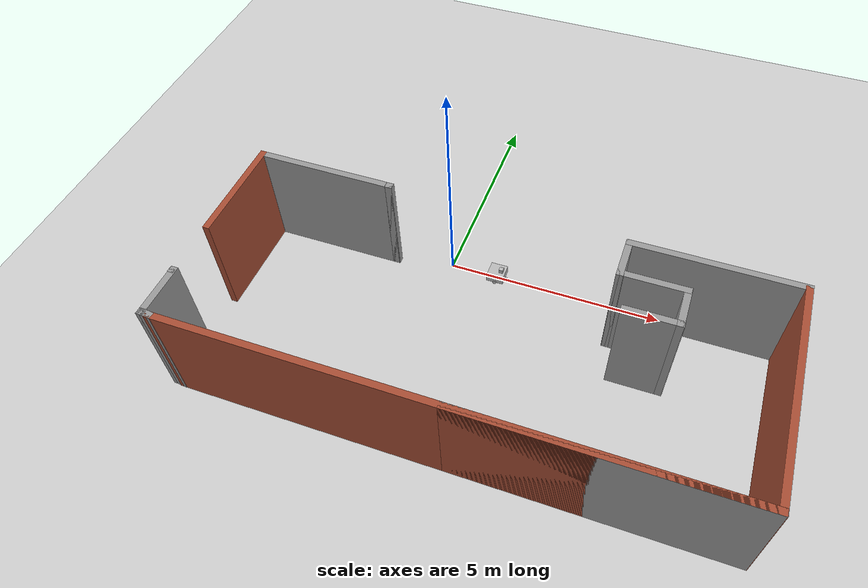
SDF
<sdf version="1.7">
 <world name="default">
  <light name="sun" type="directional">
   <pose>0 0 10 0 -0 0</pose>
   <diffuse>0.8 0.8 0.8 1</diffuse>
   <specular>0.2 0.2 0.2 1</specular>
   <attenuation>
    <range>1000</range>
    <constant>0.9</constant>
    <linear>0.01</linear>
    <quadratic>0.001</quadratic>
   </attenuation>
   <direction>-0.5 0.1 -0.9</direction>
   <spot><inner_angle>0</inner_angle><outer_angle>0</outer_angle><falloff>0</falloff></spot>
  </light>
  <model name="ground_plane">
   <static>1</static>
   <link name="link">
    <collision name="collision">
     <geometry><plane><normal>0 0 1</normal><size>100 100</size></plane></geometry>
     <surface>
      <contact><collide_bitmask>65535</collide_bitmask></contact>
      <friction><ode><mu>100</mu><mu2>50</mu2></ode></friction>
     </surface>
    </collision>
    <visual name="visual">
     <cast_shadows>0</cast_shadows>
     <geometry><plane><normal>0 0 1</normal><size>100 100</size></plane></geometry>
     <material>
      <script><uri>file://media/materials/scripts/gazebo.material</uri><name>Gazebo/Grey</name></script>
     </material>
    </visual>
   </link>
  </model>
  <gravity>0 0 -9.8</gravity>
  <magnetic_field>6e-06 2.3e-05 -4.2e-05</magnetic_field>
  <atmosphere type="adiabatic"/>
  <physics type="ode">
   <max_step_size>0.001</max_step_size>
   <real_time_factor>1</real_time_factor>
   <real_time_update_rate>1000</real_time_update_rate>
  </physics>
  <scene><ambient>0.4 0.4 0.4 1</ambient><background>0.7 0.7 0.7 1</background><shadows>1</shadows></scene>
  <spherical_coordinates>
   <surface_model>EARTH_WGS84</surface_model>
   <latitude_deg>0</latitude_deg>
   <longitude_deg>0</longitude_deg>
   <elevation>0</elevation>
   <heading_deg>0</heading_deg>
  </spherical_coordinates>
  <model name="differential_drive_robot">
   <link name="base_link">
    <inertial>
     <pose>1e-06 0 0.1 0 -0 0</pose>
     <mass>1.00001</mass>
     <inertia>
      <ixx>0.100001</ixx>
      <ixy>0</ixy>
      <ixz>-4.99995e-08</ixz>
      <iyy>0.100001</iyy>
      <iyz>0</iyz>
      <izz>0.100001</izz>
     </inertia>
    </inertial>
    <collision name="base_link_collision"><geometry><box><size>0.4 0.4 0.2</size></box></geometry></collision>
    <collision name="base_link_fixed_joint_lump__laser_collision_1">
     <pose>0.1 0 0.15 0 -0 0</pose>
     <geometry><box><size>0.1 0.1 0.1</size></box></geometry>
    </collision>
    <visual name="base_link_visual"><geometry><box><size>0.4 0.4 0.2</size></box></geometry></visual>
    <visual name="base_link_fixed_joint_lump__laser_visual_1">
     <pose>0.1 0 0.15 0 -0 0</pose>
     <geometry><box><size>0.1 0.1 0.1</size></box></geometry>
    </visual>
    <sensor name="laser_sensor" type="ray">
     <visualize>1</visualize>
     <update_rate>40</update_rate>
     <ray>
      <scan>
       <horizontal>
        <samples>640</samples>
        <resolution>1</resolution>
        <min_angle>-1.5708</min_angle>
        <max_angle>1.5708</max_angle>
       </horizontal>
       <vertical><samples>1</samples><min_angle>0</min_angle><max_angle>0</max_angle></vertical>
      </scan>
      <range><min>0.1</min><max>10</max><resolution>0.01</resolution></range>
     </ray>
     <plugin name="gazebo_ros_laser" filename="libgazebo_ros_laser.so">
      <topicName>scan</topicName>
      <frameName>laser</frameName>
      <robotNamespace>/</robotNamespace>
     </plugin>
     <pose>0.1 0 0.15 0 -0 0</pose>
    </sensor>
   </link>
   <joint name="back_wheel_joint" type="revolute">
    <pose relative_to="base_link">-0.2 0 -0.1 0 -0 0</pose>
    <parent>base_link</parent>
    <child>back_wheel</child>
    <axis>
     <xyz>0 1 0</xyz>
     <limit><lower>-1e+16</lower><upper>1e+16</upper></limit>
     <dynamics><spring_reference>0</spring_reference><spring_stiffness>0</spring_stiffness></dynamics>
    </axis>
   </joint>
   <link name="back_wheel">
    <pose relative_to="back_wheel_joint">0 0 0 0 -0 0</pose>
    <inertial>
     <mass>0.5</mass>
     <inertia><ixx>0.1</ixx><ixy>0</ixy><ixz>0</ixz><iyy>0.1</iyy><iyz>0</iyz><izz>0.1</izz></inertia>
    </inertial>
    <collision name="back_wheel_collision">
     <pose>0 0 0 1.5708 -0 0</pose>
     <geometry><cylinder><length>0.02</length><radius>0.05</radius></cylinder></geometry>
    </collision>
    <visual name="back_wheel_visual">
     <pose>0 0 0 1.5708 -0 0</pose>
     <geometry><cylinder><length>0.02</length><radius>0.05</radius></cylinder></geometry>
    </visual>
   </link>
   <joint name="front_wheel_joint" type="revolute">
    <pose relative_to="base_link">0.2 0 -0.1 0 -0 0</pose>
    <parent>base_link</parent>
    <child>front_wheel</child>
    <axis>
     <xyz>0 1 0</xyz>
     <limit><lower>-1e+16</lower><upper>1e+16</upper></limit>
     <dynamics><spring_reference>0</spring_reference><spring_stiffness>0</spring_stiffness></dynamics>
    </axis>
   </joint>
   <link name="front_wheel">
    <pose relative_to="front_wheel_joint">0 0 0 0 -0 0</pose>
    <inertial>
     <mass>0.5</mass>
     <inertia><ixx>0.1</ixx><ixy>0</ixy><ixz>0</ixz><iyy>0.1</iyy><iyz>0</iyz><izz>0.1</izz></inertia>
    </inertial>
    <collision name="front_wheel_collision">
     <pose>0 0 0 1.5708 -0 0</pose>
     <geometry><cylinder><length>0.02</length><radius>0.05</radius></cylinder></geometry>
    </collision>
    <visual name="front_wheel_visual">
     <pose>0 0 0 1.5708 -0 0</pose>
     <geometry><cylinder><length>0.02</length><radius>0.05</radius></cylinder></geometry>
    </visual>
   </link>
   <joint name="left_wheel_joint" type="revolute">
    <pose relative_to="base_link">0 0.2 -0.1 0 -0 0</pose>
    <parent>base_link</parent>
    <child>left_wheel</child>
    <axis>
     <xyz>0 1 0</xyz>
     <limit><lower>-1e+16</lower><upper>1e+16</upper></limit>
     <dynamics><spring_reference>0</spring_reference><spring_stiffness>0</spring_stiffness></dynamics>
    </axis>
   </joint>
   <link name="left_wheel">
    <pose relative_to="left_wheel_joint">0 0 0 0 -0 0</pose>
    <inertial>
     <mass>0.5</mass>
     <inertia><ixx>0.1</ixx><ixy>0</ixy><ixz>0</ixz><iyy>0.1</iyy><iyz>0</iyz><izz>0.1</izz></inertia>
    </inertial>
    <collision name="left_wheel_collision">
     <pose>0 0 0 1.5708 -0 0</pose>
     <geometry><cylinder><length>0.02</length><radius>0.05</radius></cylinder></geometry>
    </collision>
    <visual name="left_wheel_visual">
     <pose>0 0 0 1.5708 -0 0</pose>
     <geometry><cylinder><length>0.02</length><radius>0.05</radius></cylinder></geometry>
    </visual>
   </link>
   <joint name="right_wheel_joint" type="revolute">
    <pose relative_to="base_link">0 -0.2 -0.1 0 -0 0</pose>
    <parent>base_link</parent>
    <child>right_wheel</child>
    <axis>
     <xyz>0 1 0</xyz>
     <limit><lower>-1e+16</lower><upper>1e+16</upper></limit>
     <dynamics><spring_reference>0</spring_reference><spring_stiffness>0</spring_stiffness></dynamics>
    </axis>
   </joint>
   <link name="right_wheel">
    <pose relative_to="right_wheel_joint">0 0 0 0 -0 0</pose>
    <inertial>
     <mass>0.5</mass>
     <inertia><ixx>0.1</ixx><ixy>0</ixy><ixz>0</ixz><iyy>0.1</iyy><iyz>0</iyz><izz>0.1</izz></inertia>
    </inertial>
    <collision name="right_wheel_collision">
     <pose>0 0 0 1.5708 -0 0</pose>
     <geometry><cylinder><length>0.02</length><radius>0.05</radius></cylinder></geometry>
    </collision>
    <visual name="right_wheel_visual">
     <pose>0 0 0 1.5708 -0 0</pose>
     <geometry><cylinder><length>0.02</length><radius>0.05</radius></cylinder></geometry>
    </visual>
   </link>
   <static>0</static>
   <plugin name="robot_state_publisher" filename="libgazebo_ros_robot_state.so">
    <robotNamespace>/</robotNamespace>
   </plugin>
   <plugin name="joint_state_publisher" filename="libgazebo_ros_joint_state_publisher.so">
    <joint_state_topic>joint_states</joint_state_topic>
    <robotNamespace>/</robotNamespace>
   </plugin>
   <plugin name="differential_drive_controller" filename="libgazebo_ros_diff_drive.so">
    <robotNamespace>/</robotNamespace>
    <leftJoint>left_wheel_joint</leftJoint>
    <rightJoint>right_wheel_joint</rightJoint>
    <wheelSeparation>0.4</wheelSeparation>
    <wheelRadius>0.05</wheelRadius>
    <publishWheelTF>1</publishWheelTF>
    <publishWheelJointState>1</publishWheelJointState>
    <publishTf>1</publishTf>
    <updateRate>50</updateRate>
    <commandTopic>cmd_vel</commandTopic>
    <odometryTopic>odom</odometryTopic>
    <odometryFrame>odom</odometryFrame>
    <robotBaseFrame>base_link</robotBaseFrame>
    <odometrySource>1</odometrySource>
    <wheelDiameter>0.1</wheelDiameter>
    <wheelAcceleration>0</wheelAcceleration>
    <wheelTorque>5</wheelTorque>
   </plugin>
   <pose>1.11986 0.003458 0.15 0 -5e-06 0.003097</pose>
  </model>
  <model name="myhouse">
   <pose>1.575 -2.55163 0 0 -0 0</pose>
   <link name="Wall_0">
    <collision name="Wall_0_Collision">
     <geometry><box><size>2.5 0.15 2.5</size></box></geometry>
     <pose>0 0 1.25 0 -0 0</pose>
    </collision>
    <visual name="Wall_0_Visual">
     <pose>0 0 1.25 0 -0 0</pose>
     <geometry><box><size>2.5 0.15 2.5</size></box></geometry>
     <material>
      <script><uri>file://media/materials/scripts/gazebo.material</uri><name>Gazebo/Bricks</name></script>
      <ambient>1 1 1 1</ambient>
     </material>
     <meta><layer>0</layer></meta>
    </visual>
    <pose>-6.005 1.10662 0 0 -0 1.5708</pose>
   </link>
   <link name="Wall_1">
    <collision name="Wall_1_Collision">
     <geometry><box><size>3.25 0.15 2.5</size></box></geometry>
     <pose>0 0 1.25 0 -0 0</pose>
    </collision>
    <visual name="Wall_1_Visual">
     <pose>0 0 1.25 0 -0 0</pose>
     <geometry><box><size>3.25 0.15 2.5</size></box></geometry>
     <material>
      <script><uri>file://media/materials/scripts/gazebo.material</uri><name>Gazebo/Grey</name></script>
      <ambient>1 1 1 1</ambient>
     </material>
     <meta><layer>0</layer></meta>
    </visual>
    <pose>-4.455 2.28163 0 0 -0 0</pose>
   </link>
   <link name="Wall_10">
    <collision name="Wall_10_Collision">
     <geometry><box><size>0.321172 0.15 2.5</size></box></geometry>
     <pose>0 0 1.25 0 -0 0</pose>
    </collision>
    <visual name="Wall_10_Visual">
     <pose>0 0 1.25 0 -0 0</pose>
     <geometry><box><size>0.321172 0.15 2.5</size></box></geometry>
     <material>
      <script><uri>file://media/materials/scripts/gazebo.material</uri><name>Gazebo/Grey</name></script>
      <ambient>1 1 1 1</ambient>
     </material>
     <meta><layer>0</layer></meta>
    </visual>
    <pose>-5.92 -2.45838 0 0 -0 -0.117109</pose>
   </link>
   <link name="Wall_11">
    <collision name="Wall_11_Collision">
     <geometry><box><size>12 0.15 2.5</size></box></geometry>
     <pose>0 0 1.25 0 -0 0</pose>
    </collision>
    <visual name="Wall_11_Visual">
     <pose>0 0 1.25 0 -0 0</pose>
     <geometry><box><size>12 0.15 2.5</size></box></geometry>
     <material>
      <script><uri>file://media/materials/scripts/gazebo.material</uri><name>Gazebo/Bricks</name></script>
      <ambient>1 1 1 1</ambient>
     </material>
     <meta><layer>0</layer></meta>
    </visual>
    <pose>0.09 -2.46837 0 0 -0 0</pose>
   </link>
   <link name="Wall_12">
    <collision name="Wall_12_Collision">
     <geometry><box><size>6 0.15 2.5</size></box></geometry>
     <pose>0 0 1.25 0 -0 0</pose>
    </collision>
    <visual name="Wall_12_Visual">
     <pose>0 0 1.25 0 -0 0</pose>
     <geometry><box><size>6 0.15 2.5</size></box></geometry>
     <material>
      <script><uri>file://media/materials/scripts/gazebo.material</uri><name>Gazebo/Grey</name></script>
      <ambient>1 1 1 1</ambient>
     </material>
     <meta><layer>0</layer></meta>
    </visual>
    <pose>3.09 -2.46837 0 0 -0 3.14159</pose>
   </link>
   <link name="Wall_13">
    <collision name="Wall_13_Collision">
     <geometry><box><size>6 0.15 2.5</size></box></geometry>
     <pose>0 0 1.25 0 -0 0</pose>
    </collision>
    <visual name="Wall_13_Visual">
     <pose>0 0 1.25 0 -0 0</pose>
     <geometry><box><size>6 0.15 2.5</size></box></geometry>
     <material>
      <script><uri>file://media/materials/scripts/gazebo.material</uri><name>Gazebo/Bricks</name></script>
      <ambient>1 1 1 1</ambient>
     </material>
     <meta><layer>0</layer></meta>
    </visual>
    <pose>3.09 -2.46837 0 0 -0 0</pose>
   </link>
   <link name="Wall_14">
    <collision name="Wall_14_Collision">
     <geometry><box><size>0.16 0.15 2.5</size></box></geometry>
     <pose>0 0 1.25 0 -0 0</pose>
    </collision>
    <visual name="Wall_14_Visual">
     <pose>0 0 1.25 0 -0 0</pose>
     <geometry><box><size>0.16 0.15 2.5</size></box></geometry>
     <material>
      <script><uri>file://media/materials/scripts/gazebo.material</uri><name>Gazebo/Grey</name></script>
      <ambient>1 1 1 1</ambient>
     </material>
     <meta><layer>0</layer></meta>
    </visual>
    <pose>6.02 -2.46837 0 0 -0 0</pose>
   </link>
   <link name="Wall_15">
    <collision name="Wall_15_Collision">
     <geometry><box><size>5 0.15 2.5</size></box></geometry>
     <pose>0 0 1.25 0 -0 0</pose>
    </collision>
    <visual name="Wall_15_Visual">
     <pose>0 0 1.25 0 -0 0</pose>
     <geometry><box><size>5 0.15 2.5</size></box></geometry>
     <material>
      <script><uri>file://media/materials/scripts/gazebo.material</uri><name>Gazebo/Bricks</name></script>
      <ambient>1 1 1 1</ambient>
     </material>
     <meta><layer>0</layer></meta>
    </visual>
    <pose>6.025 -0.043375 0 0 -0 1.5708</pose>
   </link>
   <link name="Wall_16">
    <collision name="Wall_16_Collision">
     <geometry><box><size>3.75 0.15 2.5</size></box></geometry>
     <pose>0 0 1.25 0 -0 0</pose>
    </collision>
    <visual name="Wall_16_Visual">
     <pose>0 0 1.25 0 -0 0</pose>
     <geometry><box><size>3.75 0.15 2.5</size></box></geometry>
     <material>
      <script><uri>file://media/materials/scripts/gazebo.material</uri><name>Gazebo/Grey</name></script>
      <ambient>1 1 1 1</ambient>
     </material>
     <meta><layer>0</layer></meta>
    </visual>
    <pose>4.225 2.38163 0 0 -0 3.14159</pose>
   </link>
   <link name="Wall_17">
    <collision name="Wall_17_Collision">
     <geometry><box><size>1 0.15 2.5</size></box></geometry>
     <pose>0 0 1.25 0 -0 0</pose>
    </collision>
    <visual name="Wall_17_Visual">
     <pose>0 0 1.25 0 -0 0</pose>
     <geometry><box><size>1 0.15 2.5</size></box></geometry>
     <material>
      <script><uri>file://media/materials/scripts/gazebo.material</uri><name>Gazebo/Grey</name></script>
      <ambient>1 1 1 1</ambient>
     </material>
     <meta><layer>0</layer></meta>
    </visual>
    <pose>2.425 1.95663 0 0 -0 -1.5708</pose>
   </link>
   <link name="Wall_18">
    <collision name="Wall_18_Collision">
     <geometry><box><size>0.16 0.15 2.5</size></box></geometry>
     <pose>0 0 1.25 0 -0 0</pose>
    </collision>
    <visual name="Wall_18_Visual">
     <pose>0 0 1.25 0 -0 0</pose>
     <geometry><box><size>0.16 0.15 2.5</size></box></geometry>
     <material>
      <script><uri>file://media/materials/scripts/gazebo.material</uri><name>Gazebo/Grey</name></script>
      <ambient>1 1 1 1</ambient>
     </material>
     <meta><layer>0</layer></meta>
    </visual>
    <pose>2.43 1.53163 0 0 -0 0</pose>
   </link>
   <link name="Wall_19">
    <collision name="Wall_19_Collision">
     <geometry><box><size>1.5 0.15 2.5</size></box></geometry>
     <pose>0 0 1.25 0 -0 0</pose>
    </collision>
    <visual name="Wall_19_Visual">
     <pose>0 0 1.25 0 -0 0</pose>
     <geometry><box><size>1.5 0.15 2.5</size></box></geometry>
     <material>
      <script><uri>file://media/materials/scripts/gazebo.material</uri><name>Gazebo/Grey</name></script>
      <ambient>1 1 1 1</ambient>
     </material>
     <meta><layer>0</layer></meta>
    </visual>
    <pose>3.11 1.53163 0 0 -0 0</pose>
   </link>
   <link name="Wall_2">
    <collision name="Wall_2_Collision">
     <geometry><box><size>0.16 0.15 2.5</size></box></geometry>
     <pose>0 0 1.25 0 -0 0</pose>
    </collision>
    <visual name="Wall_2_Visual">
     <pose>0 0 1.25 0 -0 0</pose>
     <geometry><box><size>0.16 0.15 2.5</size></box></geometry>
     <material>
      <script><uri>file://media/materials/scripts/gazebo.material</uri><name>Gazebo/Grey</name></script>
      <ambient>1 1 1 1</ambient>
     </material>
     <meta><layer>0</layer></meta>
    </visual>
    <pose>-2.9 2.28163 0 0 -0 0</pose>
   </link>
   <link name="Wall_20">
    <collision name="Wall_20_Collision">
     <geometry><box><size>0.16 0.15 2.5</size></box></geometry>
     <pose>0 0 1.25 0 -0 0</pose>
    </collision>
    <visual name="Wall_20_Visual">
     <pose>0 0 1.25 0 -0 0</pose>
     <geometry><box><size>0.16 0.15 2.5</size></box></geometry>
     <material>
      <script><uri>file://media/materials/scripts/gazebo.material</uri><name>Gazebo/Grey</name></script>
      <ambient>1 1 1 1</ambient>
     </material>
     <meta><layer>0</layer></meta>
    </visual>
    <pose>3.79 1.53163 0 0 -0 0</pose>
   </link>
   <link name="Wall_21">
    <collision name="Wall_21_Collision">
     <geometry><box><size>1 0.15 2.5</size></box></geometry>
     <pose>0 0 1.25 0 -0 0</pose>
    </collision>
    <visual name="Wall_21_Visual">
     <pose>0 0 1.25 0 -0 0</pose>
     <geometry><box><size>1 0.15 2.5</size></box></geometry>
     <material>
      <script><uri>file://media/materials/scripts/gazebo.material</uri><name>Gazebo/Grey</name></script>
      <ambient>1 1 1 1</ambient>
     </material>
     <meta><layer>0</layer></meta>
    </visual>
    <pose>3.795 1.10662 0 0 -0 -1.5708</pose>
   </link>
   <link name="Wall_22">
    <collision name="Wall_22_Collision">
     <geometry><box><size>0.16 0.15 2.5</size></box></geometry>
     <pose>0 0 1.25 0 -0 0</pose>
    </collision>
    <visual name="Wall_22_Visual">
     <pose>0 0 1.25 0 -0 0</pose>
     <geometry><box><size>0.16 0.15 2.5</size></box></geometry>
     <material>
      <script><uri>file://media/materials/scripts/gazebo.material</uri><name>Gazebo/Grey</name></script>
      <ambient>1 1 1 1</ambient>
     </material>
     <meta><layer>0</layer></meta>
    </visual>
    <pose>3.8 0.681625 0 0 -0 0</pose>
   </link>
   <link name="Wall_23">
    <collision name="Wall_23_Collision">
     <geometry><box><size>1.25 0.15 2.5</size></box></geometry>
     <pose>0 0 1.25 0 -0 0</pose>
    </collision>
    <visual name="Wall_23_Visual">
     <pose>0 0 1.25 0 -0 0</pose>
     <geometry><box><size>1.25 0.15 2.5</size></box></geometry>
     <material>
      <script><uri>file://media/materials/scripts/gazebo.material</uri><name>Gazebo/Grey</name></script>
      <ambient>1 1 1 1</ambient>
     </material>
     <meta><layer>0</layer></meta>
    </visual>
    <pose>3.255 0.681625 0 0 -0 3.14159</pose>
   </link>
   <link name="Wall_3">
    <collision name="Wall_3_Collision">
     <geometry><box><size>0.16 0.15 2.5</size></box></geometry>
     <pose>0 0 1.25 0 -0 0</pose>
    </collision>
    <visual name="Wall_3_Visual">
     <pose>0 0 1.25 0 -0 0</pose>
     <geometry><box><size>0.16 0.15 2.5</size></box></geometry>
     <material>
      <script><uri>file://media/materials/scripts/gazebo.material</uri><name>Gazebo/Grey</name></script>
      <ambient>1 1 1 1</ambient>
     </material>
     <meta><layer>0</layer></meta>
    </visual>
    <pose>-2.89 2.28163 0 0 -0 0</pose>
   </link>
   <link name="Wall_5">
    <collision name="Wall_5_Collision">
     <geometry><box><size>0.16 0.15 2.5</size></box></geometry>
     <pose>0 0 1.25 0 -0 0</pose>
    </collision>
    <visual name="Wall_5_Visual">
     <pose>0 0 1.25 0 -0 0</pose>
     <geometry><box><size>0.16 0.15 2.5</size></box></geometry>
     <material>
      <script><uri>file://media/materials/scripts/gazebo.material</uri><name>Gazebo/Grey</name></script>
      <ambient>1 1 1 1</ambient>
     </material>
     <meta><layer>0</layer></meta>
    </visual>
    <pose>-6.02 -1.34838 0 0 -0 0</pose>
   </link>
   <link name="Wall_6">
    <collision name="Wall_6_Collision">
     <geometry><box><size>1.25 0.15 2.5</size></box></geometry>
     <pose>0 0 1.25 0 -0 0</pose>
    </collision>
    <visual name="Wall_6_Visual">
     <pose>0 0 1.25 0 -0 0</pose>
     <geometry><box><size>1.25 0.15 2.5</size></box></geometry>
     <material>
      <script><uri>file://media/materials/scripts/gazebo.material</uri><name>Gazebo/Grey</name></script>
      <ambient>1 1 1 1</ambient>
     </material>
     <meta><layer>0</layer></meta>
    </visual>
    <pose>-6.015 -1.89837 0 0 -0 -1.5708</pose>
   </link>
   <link name="Wall_7">
    <collision name="Wall_7_Collision">
     <geometry><box><size>0.16 0.15 2.5</size></box></geometry>
     <pose>0 0 1.25 0 -0 0</pose>
    </collision>
    <visual name="Wall_7_Visual">
     <pose>0 0 1.25 0 -0 0</pose>
     <geometry><box><size>0.16 0.15 2.5</size></box></geometry>
     <material>
      <script><uri>file://media/materials/scripts/gazebo.material</uri><name>Gazebo/Grey</name></script>
      <ambient>1 1 1 1</ambient>
     </material>
     <meta><layer>0</layer></meta>
    </visual>
    <pose>-6.01 -2.44837 0 0 -0 0</pose>
   </link>
   <link name="Wall_8">
    <collision name="Wall_8_Collision">
     <geometry><box><size>0.16 0.15 2.5</size></box></geometry>
     <pose>0 0 1.25 0 -0 0</pose>
    </collision>
    <visual name="Wall_8_Visual">
     <pose>0 0 1.25 0 -0 0</pose>
     <geometry><box><size>0.16 0.15 2.5</size></box></geometry>
     <material>
      <script><uri>file://media/materials/scripts/gazebo.material</uri><name>Gazebo/Grey</name></script>
      <ambient>1 1 1 1</ambient>
     </material>
     <meta><layer>0</layer></meta>
    </visual>
    <pose>-6.01 -2.44837 0 0 -0 3.14159</pose>
   </link>
   <static>1</static>
  </model>
 </world>
</sdf>
